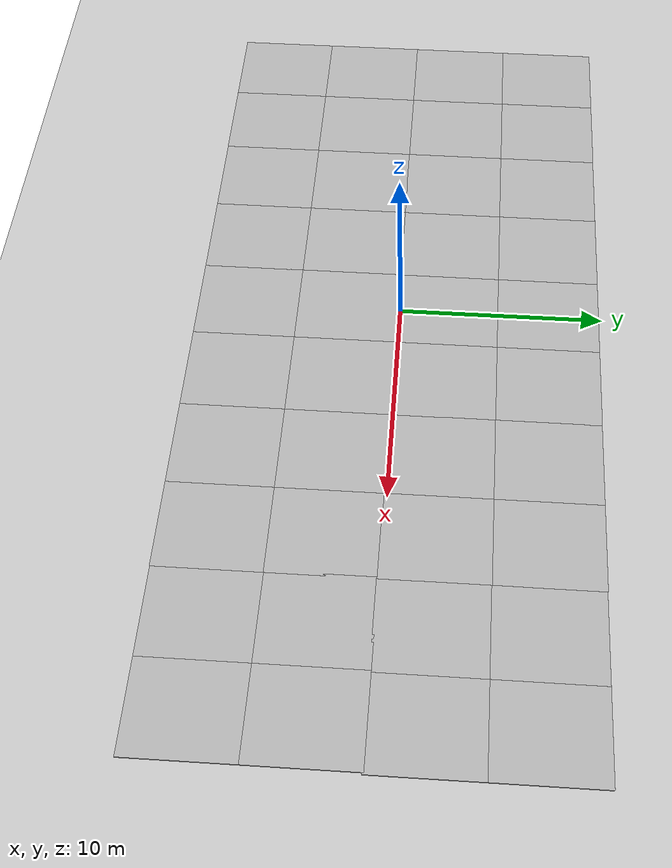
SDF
<sdf version="1.6">
 <world name="default">
  <light name="sun" type="directional">
   <pose>0 0 10 0 -0 0</pose>
   <diffuse>0.8 0.8 0.8 1</diffuse>
   <specular>0.1 0.1 0.1 1</specular>
   <attenuation>
    <range>1000</range>
    <constant>0.9</constant>
    <linear>0.01</linear>
    <quadratic>0.001</quadratic>
   </attenuation>
   <direction>-0.5 0.5 -1</direction>
  </light>
  <model name="ground_plane">
   <static>1</static>
   <link name="link">
    <collision name="collision">
     <geometry><plane><normal>0 0 1</normal><size>100 100</size></plane></geometry>
     <surface><friction><ode><mu>100</mu><mu2>50</mu2></ode></friction></surface>
    </collision>
    <visual name="visual">
     <cast_shadows>0</cast_shadows>
     <geometry><plane><normal>0 0 1</normal><size>100 100</size></plane></geometry>
     <material>
      <script><uri>file://media/materials/scripts/gazebo.material</uri><name>Gazebo/Grey</name></script>
     </material>
    </visual>
   </link>
  </model>
  <gravity>0 0 -9.8</gravity>
  <magnetic_field>6e-06 2.3e-05 -4.2e-05</magnetic_field>
  <atmosphere type="adiabatic"/>
  <physics name="default_physics" default="0" type="ode">
   <max_step_size>0.001</max_step_size>
   <real_time_factor>1</real_time_factor>
   <real_time_update_rate>1000</real_time_update_rate>
  </physics>
  <scene><ambient>0.4 0.4 0.4 1</ambient><background>0.7 0.7 0.7 1</background><shadows>1</shadows></scene>
  <spherical_coordinates>
   <surface_model>EARTH_WGS84</surface_model>
   <latitude_deg>0</latitude_deg>
   <longitude_deg>0</longitude_deg>
   <elevation>0</elevation>
   <heading_deg>0</heading_deg>
  </spherical_coordinates>
  <model name="mud_box">
   <static>1</static>
   <link name="link">
    <collision name="collision"><geometry><box><size>8 10 0.2</size></box></geometry></collision>
    <visual name="visual_1">
     <pose>-2 2.5 0 0 -0 0</pose>
     <cast_shadows>0</cast_shadows>
     <geometry><box><size>4 5 0.2</size></box></geometry>
     <material>
      <script>
       <uri>/home/zrh/agribot/install/agribot_gazebo/share/agribot_gazebo/models/mud_box/materials/scripts</uri>
       <uri>/home/zrh/agribot/install/agribot_gazebo/share/agribot_gazebo/models/mud_box/materials/textures</uri>
       <name>vrc/mud</name>
      </script>
     </material>
    </visual>
    <visual name="visual_2">
     <pose>2 2.5 0 0 -0 0</pose>
     <cast_shadows>0</cast_shadows>
     <geometry><box><size>4 5 0.2</size></box></geometry>
     <material>
      <script>
       <uri>/home/zrh/agribot/install/agribot_gazebo/share/agribot_gazebo/models/mud_box/materials/scripts</uri>
       <uri>/home/zrh/agribot/install/agribot_gazebo/share/agribot_gazebo/models/mud_box/materials/textures</uri>
       <name>vrc/mud</name>
      </script>
     </material>
    </visual>
    <visual name="visual_3">
     <pose>2 -2.5 0 0 -0 0</pose>
     <cast_shadows>0</cast_shadows>
     <geometry><box><size>4 5 0.2</size></box></geometry>
     <material>
      <script>
       <uri>/home/zrh/agribot/install/agribot_gazebo/share/agribot_gazebo/models/mud_box/materials/scripts</uri>
       <uri>/home/zrh/agribot/install/agribot_gazebo/share/agribot_gazebo/models/mud_box/materials/textures</uri>
       <name>vrc/mud</name>
      </script>
     </material>
    </visual>
    <visual name="visual_4">
     <pose>-2 -2.5 0 0 -0 0</pose>
     <cast_shadows>0</cast_shadows>
     <geometry><box><size>4 5 0.2</size></box></geometry>
     <material>
      <script>
       <uri>/home/zrh/agribot/install/agribot_gazebo/share/agribot_gazebo/models/mud_box/materials/scripts</uri>
       <uri>/home/zrh/agribot/install/agribot_gazebo/share/agribot_gazebo/models/mud_box/materials/textures</uri>
       <name>vrc/mud</name>
      </script>
     </material>
    </visual>
   </link>
   <pose>-6.12765 4.83622 0 0 -0 0</pose>
  </model>
  <model name="mud_box_0">
   <static>1</static>
   <link name="link">
    <collision name="collision"><geometry><box><size>8 10 0.2</size></box></geometry></collision>
    <visual name="visual_1">
     <pose>-2 2.5 0 0 -0 0</pose>
     <cast_shadows>0</cast_shadows>
     <geometry><box><size>4 5 0.2</size></box></geometry>
     <material>
      <script>
       <uri>/home/zrh/agribot/install/agribot_gazebo/share/agribot_gazebo/models/mud_box/materials/scripts</uri>
       <uri>/home/zrh/agribot/install/agribot_gazebo/share/agribot_gazebo/models/mud_box/materials/textures</uri>
       <name>vrc/mud</name>
      </script>
     </material>
    </visual>
    <visual name="visual_2">
     <pose>2 2.5 0 0 -0 0</pose>
     <cast_shadows>0</cast_shadows>
     <geometry><box><size>4 5 0.2</size></box></geometry>
     <material>
      <script>
       <uri>/home/zrh/agribot/install/agribot_gazebo/share/agribot_gazebo/models/mud_box/materials/scripts</uri>
       <uri>/home/zrh/agribot/install/agribot_gazebo/share/agribot_gazebo/models/mud_box/materials/textures</uri>
       <name>vrc/mud</name>
      </script>
     </material>
    </visual>
    <visual name="visual_3">
     <pose>2 -2.5 0 0 -0 0</pose>
     <cast_shadows>0</cast_shadows>
     <geometry><box><size>4 5 0.2</size></box></geometry>
     <material>
      <script>
       <uri>/home/zrh/agribot/install/agribot_gazebo/share/agribot_gazebo/models/mud_box/materials/scripts</uri>
       <uri>/home/zrh/agribot/install/agribot_gazebo/share/agribot_gazebo/models/mud_box/materials/textures</uri>
       <name>vrc/mud</name>
      </script>
     </material>
    </visual>
    <visual name="visual_4">
     <pose>-2 -2.5 0 0 -0 0</pose>
     <cast_shadows>0</cast_shadows>
     <geometry><box><size>4 5 0.2</size></box></geometry>
     <material>
      <script>
       <uri>/home/zrh/agribot/install/agribot_gazebo/share/agribot_gazebo/models/mud_box/materials/scripts</uri>
       <uri>/home/zrh/agribot/install/agribot_gazebo/share/agribot_gazebo/models/mud_box/materials/textures</uri>
       <name>vrc/mud</name>
      </script>
     </material>
    </visual>
   </link>
   <pose>1.86767 4.83104 0 0 -0 0</pose>
  </model>
  <model name="mud_box_1">
   <static>1</static>
   <link name="link">
    <collision name="collision"><geometry><box><size>8 10 0.2</size></box></geometry></collision>
    <visual name="visual_1">
     <pose>-2 2.5 0 0 -0 0</pose>
     <cast_shadows>0</cast_shadows>
     <geometry><box><size>4 5 0.2</size></box></geometry>
     <material>
      <script>
       <uri>/home/zrh/agribot/install/agribot_gazebo/share/agribot_gazebo/models/mud_box/materials/scripts</uri>
       <uri>/home/zrh/agribot/install/agribot_gazebo/share/agribot_gazebo/models/mud_box/materials/textures</uri>
       <name>vrc/mud</name>
      </script>
     </material>
    </visual>
    <visual name="visual_2">
     <pose>2 2.5 0 0 -0 0</pose>
     <cast_shadows>0</cast_shadows>
     <geometry><box><size>4 5 0.2</size></box></geometry>
     <material>
      <script>
       <uri>/home/zrh/agribot/install/agribot_gazebo/share/agribot_gazebo/models/mud_box/materials/scripts</uri>
       <uri>/home/zrh/agribot/install/agribot_gazebo/share/agribot_gazebo/models/mud_box/materials/textures</uri>
       <name>vrc/mud</name>
      </script>
     </material>
    </visual>
    <visual name="visual_3">
     <pose>2 -2.5 0 0 -0 0</pose>
     <cast_shadows>0</cast_shadows>
     <geometry><box><size>4 5 0.2</size></box></geometry>
     <material>
      <script>
       <uri>/home/zrh/agribot/install/agribot_gazebo/share/agribot_gazebo/models/mud_box/materials/scripts</uri>
       <uri>/home/zrh/agribot/install/agribot_gazebo/share/agribot_gazebo/models/mud_box/materials/textures</uri>
       <name>vrc/mud</name>
      </script>
     </material>
    </visual>
    <visual name="visual_4">
     <pose>-2 -2.5 0 0 -0 0</pose>
     <cast_shadows>0</cast_shadows>
     <geometry><box><size>4 5 0.2</size></box></geometry>
     <material>
      <script>
       <uri>/home/zrh/agribot/install/agribot_gazebo/share/agribot_gazebo/models/mud_box/materials/scripts</uri>
       <uri>/home/zrh/agribot/install/agribot_gazebo/share/agribot_gazebo/models/mud_box/materials/textures</uri>
       <name>vrc/mud</name>
      </script>
     </material>
    </visual>
   </link>
   <pose>-6.12792 -5.13998 0 0 -0 0</pose>
  </model>
  <model name="mud_box_2">
   <static>1</static>
   <link name="link">
    <collision name="collision"><geometry><box><size>8 10 0.2</size></box></geometry></collision>
    <visual name="visual_1">
     <pose>-2 2.5 0 0 -0 0</pose>
     <cast_shadows>0</cast_shadows>
     <geometry><box><size>4 5 0.2</size></box></geometry>
     <material>
      <script>
       <uri>/home/zrh/agribot/install/agribot_gazebo/share/agribot_gazebo/models/mud_box/materials/scripts</uri>
       <uri>/home/zrh/agribot/install/agribot_gazebo/share/agribot_gazebo/models/mud_box/materials/textures</uri>
       <name>vrc/mud</name>
      </script>
     </material>
    </visual>
    <visual name="visual_2">
     <pose>2 2.5 0 0 -0 0</pose>
     <cast_shadows>0</cast_shadows>
     <geometry><box><size>4 5 0.2</size></box></geometry>
     <material>
      <script>
       <uri>/home/zrh/agribot/install/agribot_gazebo/share/agribot_gazebo/models/mud_box/materials/scripts</uri>
       <uri>/home/zrh/agribot/install/agribot_gazebo/share/agribot_gazebo/models/mud_box/materials/textures</uri>
       <name>vrc/mud</name>
      </script>
     </material>
    </visual>
    <visual name="visual_3">
     <pose>2 -2.5 0 0 -0 0</pose>
     <cast_shadows>0</cast_shadows>
     <geometry><box><size>4 5 0.2</size></box></geometry>
     <material>
      <script>
       <uri>/home/zrh/agribot/install/agribot_gazebo/share/agribot_gazebo/models/mud_box/materials/scripts</uri>
       <uri>/home/zrh/agribot/install/agribot_gazebo/share/agribot_gazebo/models/mud_box/materials/textures</uri>
       <name>vrc/mud</name>
      </script>
     </material>
    </visual>
    <visual name="visual_4">
     <pose>-2 -2.5 0 0 -0 0</pose>
     <cast_shadows>0</cast_shadows>
     <geometry><box><size>4 5 0.2</size></box></geometry>
     <material>
      <script>
       <uri>/home/zrh/agribot/install/agribot_gazebo/share/agribot_gazebo/models/mud_box/materials/scripts</uri>
       <uri>/home/zrh/agribot/install/agribot_gazebo/share/agribot_gazebo/models/mud_box/materials/textures</uri>
       <name>vrc/mud</name>
      </script>
     </material>
    </visual>
   </link>
   <pose>1.85975 -5.14192 0 0 -0 0</pose>
  </model>
  <model name="mud_box_0_clone">
   <static>1</static>
   <link name="link">
    <collision name="collision"><geometry><box><size>8 10 0.2</size></box></geometry></collision>
    <visual name="visual_1">
     <pose>-2 2.5 0 0 -0 0</pose>
     <cast_shadows>0</cast_shadows>
     <geometry><box><size>4 5 0.2</size></box></geometry>
     <material>
      <script>
       <uri>/home/zrh/agribot/install/agribot_gazebo/share/agribot_gazebo/models/mud_box/materials/scripts</uri>
       <uri>/home/zrh/agribot/install/agribot_gazebo/share/agribot_gazebo/models/mud_box/materials/textures</uri>
       <name>vrc/mud</name>
      </script>
     </material>
    </visual>
    <visual name="visual_2">
     <pose>2 2.5 0 0 -0 0</pose>
     <cast_shadows>0</cast_shadows>
     <geometry><box><size>4 5 0.2</size></box></geometry>
     <material>
      <script>
       <uri>/home/zrh/agribot/install/agribot_gazebo/share/agribot_gazebo/models/mud_box/materials/scripts</uri>
       <uri>/home/zrh/agribot/install/agribot_gazebo/share/agribot_gazebo/models/mud_box/materials/textures</uri>
       <name>vrc/mud</name>
      </script>
     </material>
    </visual>
    <visual name="visual_3">
     <pose>2 -2.5 0 0 -0 0</pose>
     <cast_shadows>0</cast_shadows>
     <geometry><box><size>4 5 0.2</size></box></geometry>
     <material>
      <script>
       <uri>/home/zrh/agribot/install/agribot_gazebo/share/agribot_gazebo/models/mud_box/materials/scripts</uri>
       <uri>/home/zrh/agribot/install/agribot_gazebo/share/agribot_gazebo/models/mud_box/materials/textures</uri>
       <name>vrc/mud</name>
      </script>
     </material>
    </visual>
    <visual name="visual_4">
     <pose>-2 -2.5 0 0 -0 0</pose>
     <cast_shadows>0</cast_shadows>
     <geometry><box><size>4 5 0.2</size></box></geometry>
     <material>
      <script>
       <uri>/home/zrh/agribot/install/agribot_gazebo/share/agribot_gazebo/models/mud_box/materials/scripts</uri>
       <uri>/home/zrh/agribot/install/agribot_gazebo/share/agribot_gazebo/models/mud_box/materials/textures</uri>
       <name>vrc/mud</name>
      </script>
     </material>
    </visual>
   </link>
   <pose>9.85757 -5.14216 0 0 -0 0</pose>
  </model>
  <model name="mud_box_0_clone_clone">
   <static>1</static>
   <link name="link">
    <collision name="collision"><geometry><box><size>8 10 0.2</size></box></geometry></collision>
    <visual name="visual_1">
     <pose>-2 2.5 0 0 -0 0</pose>
     <cast_shadows>0</cast_shadows>
     <geometry><box><size>4 5 0.2</size></box></geometry>
     <material>
      <script>
       <uri>/home/zrh/agribot/install/agribot_gazebo/share/agribot_gazebo/models/mud_box/materials/scripts</uri>
       <uri>/home/zrh/agribot/install/agribot_gazebo/share/agribot_gazebo/models/mud_box/materials/textures</uri>
       <name>vrc/mud</name>
      </script>
     </material>
    </visual>
    <visual name="visual_2">
     <pose>2 2.5 0 0 -0 0</pose>
     <cast_shadows>0</cast_shadows>
     <geometry><box><size>4 5 0.2</size></box></geometry>
     <material>
      <script>
       <uri>/home/zrh/agribot/install/agribot_gazebo/share/agribot_gazebo/models/mud_box/materials/scripts</uri>
       <uri>/home/zrh/agribot/install/agribot_gazebo/share/agribot_gazebo/models/mud_box/materials/textures</uri>
       <name>vrc/mud</name>
      </script>
     </material>
    </visual>
    <visual name="visual_3">
     <pose>2 -2.5 0 0 -0 0</pose>
     <cast_shadows>0</cast_shadows>
     <geometry><box><size>4 5 0.2</size></box></geometry>
     <material>
      <script>
       <uri>/home/zrh/agribot/install/agribot_gazebo/share/agribot_gazebo/models/mud_box/materials/scripts</uri>
       <uri>/home/zrh/agribot/install/agribot_gazebo/share/agribot_gazebo/models/mud_box/materials/textures</uri>
       <name>vrc/mud</name>
      </script>
     </material>
    </visual>
    <visual name="visual_4">
     <pose>-2 -2.5 0 0 -0 0</pose>
     <cast_shadows>0</cast_shadows>
     <geometry><box><size>4 5 0.2</size></box></geometry>
     <material>
      <script>
       <uri>/home/zrh/agribot/install/agribot_gazebo/share/agribot_gazebo/models/mud_box/materials/scripts</uri>
       <uri>/home/zrh/agribot/install/agribot_gazebo/share/agribot_gazebo/models/mud_box/materials/textures</uri>
       <name>vrc/mud</name>
      </script>
     </material>
    </visual>
   </link>
   <pose>17.7661 -5.12084 0 0 -0 0</pose>
  </model>
  <model name="mud_box_0_clone_clone_0">
   <static>1</static>
   <link name="link">
    <collision name="collision"><geometry><box><size>8 10 0.2</size></box></geometry></collision>
    <visual name="visual_1">
     <pose>-2 2.5 0 0 -0 0</pose>
     <cast_shadows>0</cast_shadows>
     <geometry><box><size>4 5 0.2</size></box></geometry>
     <material>
      <script>
       <uri>/home/zrh/agribot/install/agribot_gazebo/share/agribot_gazebo/models/mud_box/materials/scripts</uri>
       <uri>/home/zrh/agribot/install/agribot_gazebo/share/agribot_gazebo/models/mud_box/materials/textures</uri>
       <name>vrc/mud</name>
      </script>
     </material>
    </visual>
    <visual name="visual_2">
     <pose>2 2.5 0 0 -0 0</pose>
     <cast_shadows>0</cast_shadows>
     <geometry><box><size>4 5 0.2</size></box></geometry>
     <material>
      <script>
       <uri>/home/zrh/agribot/install/agribot_gazebo/share/agribot_gazebo/models/mud_box/materials/scripts</uri>
       <uri>/home/zrh/agribot/install/agribot_gazebo/share/agribot_gazebo/models/mud_box/materials/textures</uri>
       <name>vrc/mud</name>
      </script>
     </material>
    </visual>
    <visual name="visual_3">
     <pose>2 -2.5 0 0 -0 0</pose>
     <cast_shadows>0</cast_shadows>
     <geometry><box><size>4 5 0.2</size></box></geometry>
     <material>
      <script>
       <uri>/home/zrh/agribot/install/agribot_gazebo/share/agribot_gazebo/models/mud_box/materials/scripts</uri>
       <uri>/home/zrh/agribot/install/agribot_gazebo/share/agribot_gazebo/models/mud_box/materials/textures</uri>
       <name>vrc/mud</name>
      </script>
     </material>
    </visual>
    <visual name="visual_4">
     <pose>-2 -2.5 0 0 -0 0</pose>
     <cast_shadows>0</cast_shadows>
     <geometry><box><size>4 5 0.2</size></box></geometry>
     <material>
      <script>
       <uri>/home/zrh/agribot/install/agribot_gazebo/share/agribot_gazebo/models/mud_box/materials/scripts</uri>
       <uri>/home/zrh/agribot/install/agribot_gazebo/share/agribot_gazebo/models/mud_box/materials/textures</uri>
       <name>vrc/mud</name>
      </script>
     </material>
    </visual>
   </link>
   <pose>17.8432 4.79546 0 0 -0 0</pose>
  </model>
  <model name="mud_box_0_clone_clone_1">
   <static>1</static>
   <link name="link">
    <collision name="collision"><geometry><box><size>8 10 0.2</size></box></geometry></collision>
    <visual name="visual_1">
     <pose>-2 2.5 0 0 -0 0</pose>
     <cast_shadows>0</cast_shadows>
     <geometry><box><size>4 5 0.2</size></box></geometry>
     <material>
      <script>
       <uri>/home/zrh/agribot/install/agribot_gazebo/share/agribot_gazebo/models/mud_box/materials/scripts</uri>
       <uri>/home/zrh/agribot/install/agribot_gazebo/share/agribot_gazebo/models/mud_box/materials/textures</uri>
       <name>vrc/mud</name>
      </script>
     </material>
    </visual>
    <visual name="visual_2">
     <pose>2 2.5 0 0 -0 0</pose>
     <cast_shadows>0</cast_shadows>
     <geometry><box><size>4 5 0.2</size></box></geometry>
     <material>
      <script>
       <uri>/home/zrh/agribot/install/agribot_gazebo/share/agribot_gazebo/models/mud_box/materials/scripts</uri>
       <uri>/home/zrh/agribot/install/agribot_gazebo/share/agribot_gazebo/models/mud_box/materials/textures</uri>
       <name>vrc/mud</name>
      </script>
     </material>
    </visual>
    <visual name="visual_3">
     <pose>2 -2.5 0 0 -0 0</pose>
     <cast_shadows>0</cast_shadows>
     <geometry><box><size>4 5 0.2</size></box></geometry>
     <material>
      <script>
       <uri>/home/zrh/agribot/install/agribot_gazebo/share/agribot_gazebo/models/mud_box/materials/scripts</uri>
       <uri>/home/zrh/agribot/install/agribot_gazebo/share/agribot_gazebo/models/mud_box/materials/textures</uri>
       <name>vrc/mud</name>
      </script>
     </material>
    </visual>
    <visual name="visual_4">
     <pose>-2 -2.5 0 0 -0 0</pose>
     <cast_shadows>0</cast_shadows>
     <geometry><box><size>4 5 0.2</size></box></geometry>
     <material>
      <script>
       <uri>/home/zrh/agribot/install/agribot_gazebo/share/agribot_gazebo/models/mud_box/materials/scripts</uri>
       <uri>/home/zrh/agribot/install/agribot_gazebo/share/agribot_gazebo/models/mud_box/materials/textures</uri>
       <name>vrc/mud</name>
      </script>
     </material>
    </visual>
   </link>
   <pose>-14.1276 -5.15209 0 0 -0 0</pose>
  </model>
  <model name="mud_box_0_clone_clone_2">
   <static>1</static>
   <link name="link">
    <collision name="collision"><geometry><box><size>8 10 0.2</size></box></geometry></collision>
    <visual name="visual_1">
     <pose>-2 2.5 0 0 -0 0</pose>
     <cast_shadows>0</cast_shadows>
     <geometry><box><size>4 5 0.2</size></box></geometry>
     <material>
      <script>
       <uri>/home/zrh/agribot/install/agribot_gazebo/share/agribot_gazebo/models/mud_box/materials/scripts</uri>
       <uri>/home/zrh/agribot/install/agribot_gazebo/share/agribot_gazebo/models/mud_box/materials/textures</uri>
       <name>vrc/mud</name>
      </script>
     </material>
    </visual>
    <visual name="visual_2">
     <pose>2 2.5 0 0 -0 0</pose>
     <cast_shadows>0</cast_shadows>
     <geometry><box><size>4 5 0.2</size></box></geometry>
     <material>
      <script>
       <uri>/home/zrh/agribot/install/agribot_gazebo/share/agribot_gazebo/models/mud_box/materials/scripts</uri>
       <uri>/home/zrh/agribot/install/agribot_gazebo/share/agribot_gazebo/models/mud_box/materials/textures</uri>
       <name>vrc/mud</name>
      </script>
     </material>
    </visual>
    <visual name="visual_3">
     <pose>2 -2.5 0 0 -0 0</pose>
     <cast_shadows>0</cast_shadows>
     <geometry><box><size>4 5 0.2</size></box></geometry>
     <material>
      <script>
       <uri>/home/zrh/agribot/install/agribot_gazebo/share/agribot_gazebo/models/mud_box/materials/scripts</uri>
       <uri>/home/zrh/agribot/install/agribot_gazebo/share/agribot_gazebo/models/mud_box/materials/textures</uri>
       <name>vrc/mud</name>
      </script>
     </material>
    </visual>
    <visual name="visual_4">
     <pose>-2 -2.5 0 0 -0 0</pose>
     <cast_shadows>0</cast_shadows>
     <geometry><box><size>4 5 0.2</size></box></geometry>
     <material>
      <script>
       <uri>/home/zrh/agribot/install/agribot_gazebo/share/agribot_gazebo/models/mud_box/materials/scripts</uri>
       <uri>/home/zrh/agribot/install/agribot_gazebo/share/agribot_gazebo/models/mud_box/materials/textures</uri>
       <name>vrc/mud</name>
      </script>
     </material>
    </visual>
   </link>
   <pose>-14.1258 4.84756 0 0 -0 0</pose>
  </model>
  <model name="mud_box_3">
   <static>1</static>
   <link name="link">
    <collision name="collision"><geometry><box><size>8 10 0.2</size></box></geometry></collision>
    <visual name="visual_1">
     <pose>-2 2.5 0 0 -0 0</pose>
     <cast_shadows>0</cast_shadows>
     <geometry><box><size>4 5 0.2</size></box></geometry>
     <material>
      <script>
       <uri>/home/zrh/agribot/install/agribot_gazebo/share/agribot_gazebo/models/mud_box/materials/scripts</uri>
       <uri>/home/zrh/agribot/install/agribot_gazebo/share/agribot_gazebo/models/mud_box/materials/textures</uri>
       <name>vrc/mud</name>
      </script>
     </material>
    </visual>
    <visual name="visual_2">
     <pose>2 2.5 0 0 -0 0</pose>
     <cast_shadows>0</cast_shadows>
     <geometry><box><size>4 5 0.2</size></box></geometry>
     <material>
      <script>
       <uri>/home/zrh/agribot/install/agribot_gazebo/share/agribot_gazebo/models/mud_box/materials/scripts</uri>
       <uri>/home/zrh/agribot/install/agribot_gazebo/share/agribot_gazebo/models/mud_box/materials/textures</uri>
       <name>vrc/mud</name>
      </script>
     </material>
    </visual>
    <visual name="visual_3">
     <pose>2 -2.5 0 0 -0 0</pose>
     <cast_shadows>0</cast_shadows>
     <geometry><box><size>4 5 0.2</size></box></geometry>
     <material>
      <script>
       <uri>/home/zrh/agribot/install/agribot_gazebo/share/agribot_gazebo/models/mud_box/materials/scripts</uri>
       <uri>/home/zrh/agribot/install/agribot_gazebo/share/agribot_gazebo/models/mud_box/materials/textures</uri>
       <name>vrc/mud</name>
      </script>
     </material>
    </visual>
    <visual name="visual_4">
     <pose>-2 -2.5 0 0 -0 0</pose>
     <cast_shadows>0</cast_shadows>
     <geometry><box><size>4 5 0.2</size></box></geometry>
     <material>
      <script>
       <uri>/home/zrh/agribot/install/agribot_gazebo/share/agribot_gazebo/models/mud_box/materials/scripts</uri>
       <uri>/home/zrh/agribot/install/agribot_gazebo/share/agribot_gazebo/models/mud_box/materials/textures</uri>
       <name>vrc/mud</name>
      </script>
     </material>
    </visual>
   </link>
   <pose>9.84986 4.82173 0 0 -0 0</pose>
  </model>
 </world>
</sdf>
